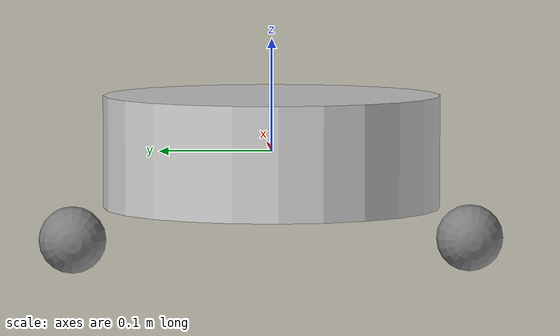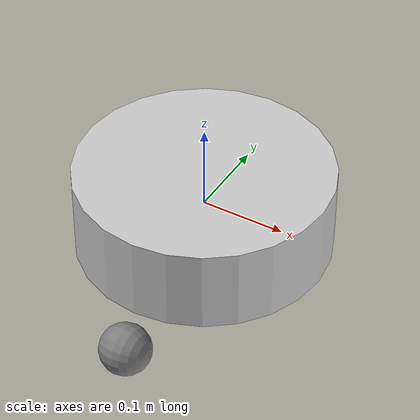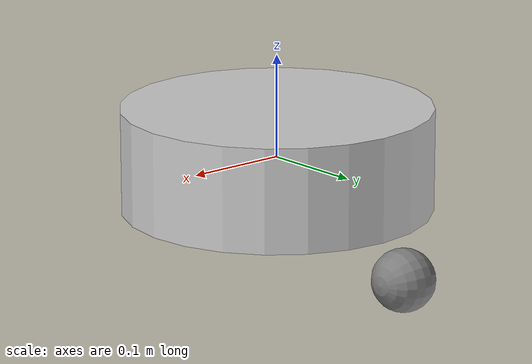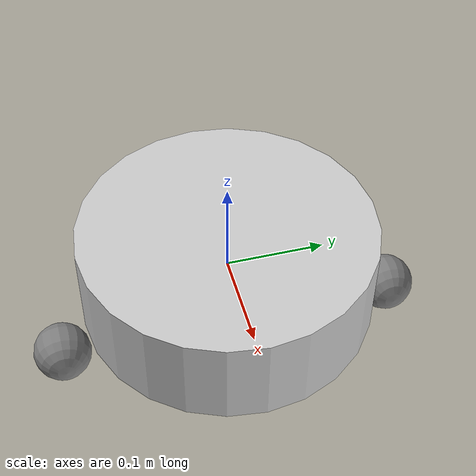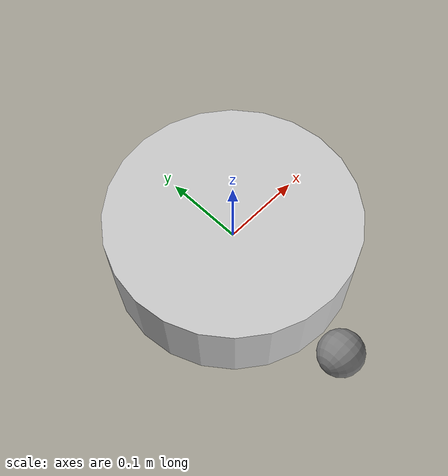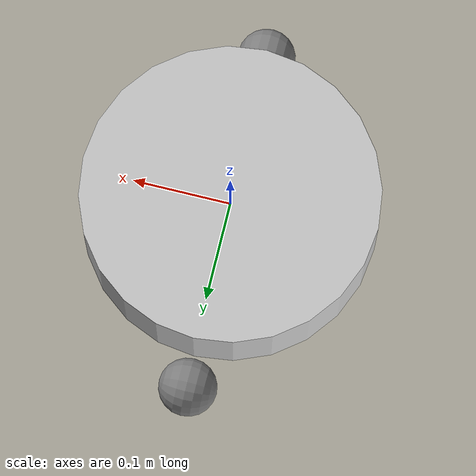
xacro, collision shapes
<?xml version="1.0"?>
<robot xmlns:xacro="http://www.ros.org/wiki/xacro" name="AquaticRobotModel2">

<xacro:arg name="prefix" default=""/>
<xacro:property name="pkg" value="swarm_robot_description_model2"/>

<!-- BASE LINK -->
<link name="base_link">
  <inertial>
    <origin xyz="3.5033E-05 -0.00012248 0.0036387" rpy="0 0 0"/>
    <mass value="10.416"/>
    <inertia
      ixx="0.037767" ixy="3.4516E-06" ixz="5.8428E-08"
      iyy="0.11162" iyz="-0.00018002" izz="0.1293"/>
  </inertial>
  <visual>
    <origin xyz="0 0 0" rpy="0 0 0"/>
    <geometry>
      <mesh filename="package://swarm_robot_description_model2/meshes/base_link.STL"/>
    </geometry>
    <material name="base_material">
      <color rgba="0.8 0.8 0.8 1"/>
    </material>
  </visual>
  <collision>
    <origin xyz="0 0 0" rpy="0 0 0"/>
    <geometry>
      <cylinder radius="0.15" length="0.1"/>
    </geometry>
  </collision>
</link>

<!-- LEFT MOTOR LINK -->
<link name="motor_izq_link">
  <inertial>
    <origin xyz="-7.6704E-10 5.0396E-05 0.0090544" rpy="0 0 0"/>
    <mass value="0.1"/>
    <inertia
      ixx="0.0001" ixy="0" ixz="0"
      iyy="0.0001" iyz="0" izz="0.0001"/>
  </inertial>
  <visual>
    <origin xyz="0 0 0" rpy="0 0 0"/>
    <geometry>
      <mesh filename="package://swarm_robot_description_model2/meshes/motor_izq_link.STL"/>
    </geometry>
    <material name="motor_material">
      <color rgba="0.5 0.5 0.5 1"/>
    </material>
  </visual>
  <collision>
    <origin xyz="0 0 0" rpy="0 0 0"/>
    <geometry>
      <sphere radius="0.03"/>
    </geometry>
  </collision>
</link>

<joint name="motor_izq_joint" type="continuous">
  <origin xyz="0.00023088 0.17753 -0.0789" rpy="1.5708 0 1.5708"/>
  <parent link="base_link"/>
  <child link="motor_izq_link"/>
  <axis xyz="0 0 1"/>
  <limit effort="100" velocity="100"/>
  <dynamics damping="0.1" friction="0"/>
</joint>

<!-- RIGHT MOTOR LINK -->
<link name="motor_der_link">
  <inertial>
    <origin xyz="-7.6704E-10 5.0396E-05 -0.0031306" rpy="0 0 0"/>
    <mass value="0.1"/>
    <inertia
      ixx="0.0001" ixy="0" ixz="0"
      iyy="0.0001" iyz="0" izz="0.0001"/>
  </inertial>
  <visual>
    <origin xyz="0 0 0" rpy="0 0 0"/>
    <geometry>
      <mesh filename="package://swarm_robot_description_model2/meshes/motor_der_link.STL"/>
    </geometry>
    <material name="motor_material">
      <color rgba="0.5 0.5 0.5 1"/>
    </material>
  </visual>
  <collision>
    <origin xyz="0 0 0" rpy="0 0 0"/>
    <geometry>
      <sphere radius="0.03"/>
    </geometry>
  </collision>
</link>

<joint name="motor_der_joint" type="continuous">
  <origin xyz="0.005363 -0.17753 -0.0789" rpy="1.5708 0 1.5708"/>
  <parent link="base_link"/>
  <child link="motor_der_link"/>
  <axis xyz="0 0 1"/>
  <limit effort="100" velocity="100"/>
  <dynamics damping="0.1" friction="0"/>
</joint>

<!-- GAZEBO PLUGINS FOR GAZEBO HARMONIC -->

<!-- Gazebo colors and materials -->
<gazebo reference="base_link">
  <material>Gazebo/Grey</material>
</gazebo>

<gazebo reference="motor_izq_link">
  <material>Gazebo/DarkGrey</material>
  <gravity>false</gravity>
</gazebo>

<gazebo reference="motor_der_link">
  <material>Gazebo/DarkGrey</material>
  <gravity>false</gravity>
</gazebo>

<!-- Disable gravity to simulate floating in water -->
<gazebo reference="base_link">
  <gravity>false</gravity>
</gazebo>

<!-- Hydrodynamics Plugin DISABLED - causing ODE issues -->

</robot>
